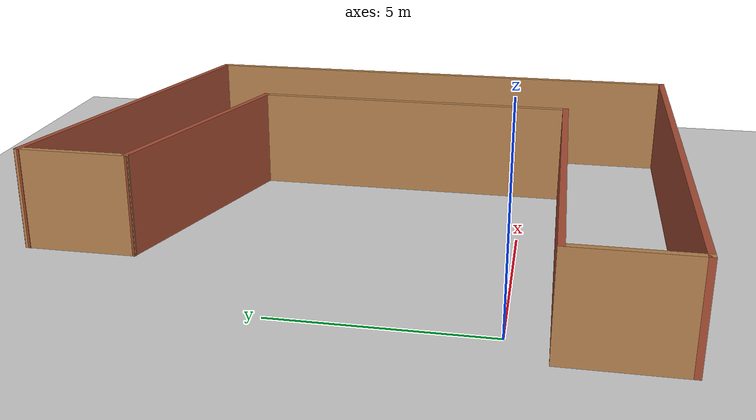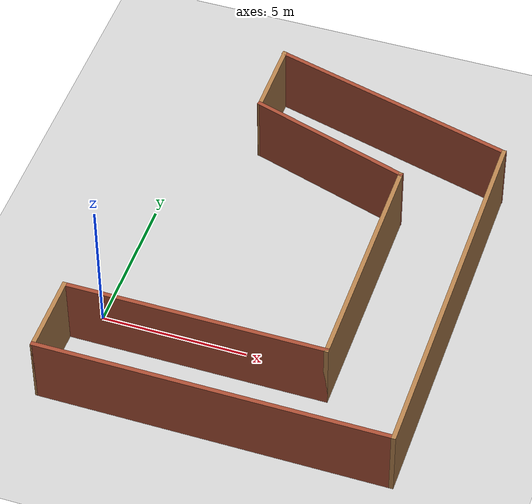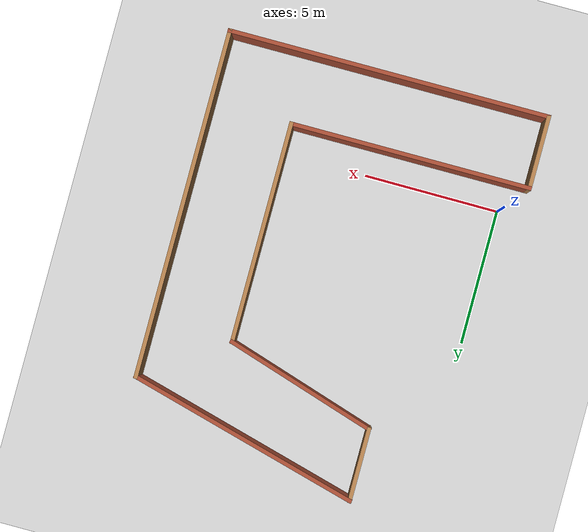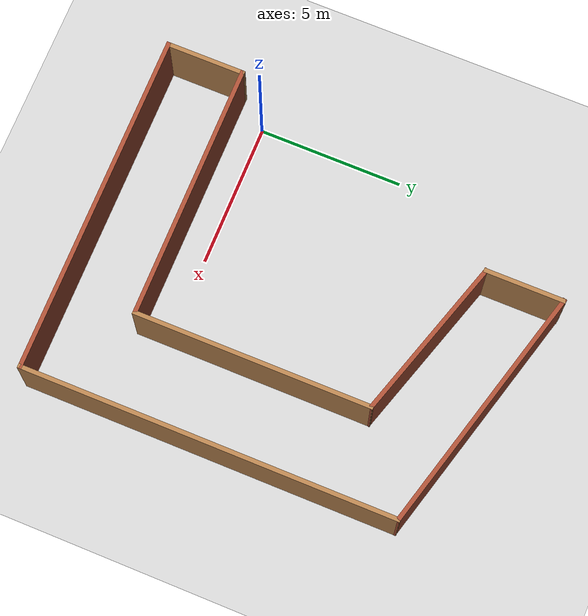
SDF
<sdf version="1.6">
 <world name="default">
  <light name="sun" type="directional">
   <pose>0 0 10 0 -0 0</pose>
   <diffuse>0.8 0.8 0.8 1</diffuse>
   <specular>0.2 0.2 0.2 1</specular>
   <attenuation>
    <range>1000</range>
    <constant>0.9</constant>
    <linear>0.01</linear>
    <quadratic>0.001</quadratic>
   </attenuation>
   <direction>-0.5 0.1 -0.9</direction>
  </light>
  <model name="ground_plane">
   <static>1</static>
   <link name="link">
    <collision name="collision">
     <geometry><plane><normal>0 0 1</normal><size>100 100</size></plane></geometry>
     <surface>
      <contact><collide_bitmask>65535</collide_bitmask></contact>
      <friction><ode><mu>100</mu><mu2>50</mu2></ode></friction>
     </surface>
    </collision>
    <visual name="visual">
     <cast_shadows>0</cast_shadows>
     <geometry><plane><normal>0 0 1</normal><size>100 100</size></plane></geometry>
     <material>
      <script><uri>file://media/materials/scripts/gazebo.material</uri><name>Gazebo/Grey</name></script>
     </material>
    </visual>
   </link>
  </model>
  <gravity>0 0 -9.8</gravity>
  <magnetic_field>6e-06 2.3e-05 -4.2e-05</magnetic_field>
  <atmosphere type="adiabatic"/>
  <physics name="default_physics" default="0" type="ode">
   <max_step_size>0.001</max_step_size>
   <real_time_factor>1</real_time_factor>
   <real_time_update_rate>1000</real_time_update_rate>
  </physics>
  <scene><ambient>0.4 0.4 0.4 1</ambient><background>0.7 0.7 0.7 1</background><shadows>1</shadows></scene>
  <audio><device>default</device></audio>
  <spherical_coordinates>
   <surface_model>EARTH_WGS84</surface_model>
   <latitude_deg>0</latitude_deg>
   <longitude_deg>0</longitude_deg>
   <elevation>0</elevation>
   <heading_deg>0</heading_deg>
  </spherical_coordinates>
  <model name="DSO_Review_Location">
   <pose>5.12984 3.92901 0 0 -0 0</pose>
   <link name="Wall_1">
    <collision name="Wall_1_Collision">
     <geometry><box><size>12 0.15 2.5</size></box></geometry>
     <pose>0 0 1.25 0 -0 0</pose>
    </collision>
    <visual name="Wall_1_Visual">
     <pose>0 0 1.25 0 -0 0</pose>
     <geometry><box><size>12 0.15 2.5</size></box></geometry>
     <material>
      <script><uri>file://media/materials/scripts/gazebo.material</uri><name>Gazebo/Bricks</name></script>
      <ambient>1 1 1 1</ambient>
     </material>
     <meta><layer>0</layer></meta>
    </visual>
    <pose>-0.008428 -7.5787 0 0 -0 0</pose>
   </link>
   <link name="Wall_11">
    <collision name="Wall_11_Collision">
     <geometry><box><size>2.8 0.15 2.5</size></box></geometry>
     <pose>0 0 1.25 0 -0 0</pose>
    </collision>
    <visual name="Wall_11_Visual">
     <pose>0 0 1.25 0 -0 0</pose>
     <geometry><box><size>2.8 0.15 2.5</size></box></geometry>
     <material>
      <script><uri>file://media/materials/scripts/gazebo.material</uri><name>Gazebo/Wood</name></script>
      <ambient>1 1 1 1</ambient>
     </material>
     <meta><layer>0</layer></meta>
    </visual>
    <pose>-2.63187 6.23685 0 0 -0 -1.5708</pose>
   </link>
   <link name="Wall_14">
    <collision name="Wall_14_Collision">
     <geometry><box><size>8.25 0.15 2.5</size></box></geometry>
     <pose>0 0 1.25 0 -0 0</pose>
    </collision>
    <visual name="Wall_14_Visual">
     <pose>0 0 1.25 0 -0 0</pose>
     <geometry><box><size>8.25 0.15 2.5</size></box></geometry>
     <material>
      <script><uri>file://media/materials/scripts/gazebo.material</uri><name>Gazebo/Wood</name></script>
      <ambient>1 1 1 1</ambient>
     </material>
     <meta><layer>0</layer></meta>
    </visual>
    <pose>2.91657 -0.878702 0 0 -0 1.5708</pose>
   </link>
   <link name="Wall_15">
    <collision name="Wall_15_Collision">
     <geometry><box><size>5.96504 0.15 2.5</size></box></geometry>
     <pose>0 0 1.25 0 -0 0</pose>
    </collision>
    <visual name="Wall_15_Visual">
     <pose>0 0 1.25 0 -0 0</pose>
     <geometry><box><size>5.96504 0.15 2.5</size></box></geometry>
     <material>
      <script><uri>file://media/materials/scripts/gazebo.material</uri><name>Gazebo/Bricks</name></script>
      <ambient>1 1 1 1</ambient>
     </material>
     <meta><layer>0</layer></meta>
    </visual>
    <pose>0.14235 4.04157 0 0 -0 2.83761</pose>
   </link>
   <link name="Wall_3">
    <collision name="Wall_3_Collision">
     <geometry><box><size>13 0.15 2.5</size></box></geometry>
     <pose>0 0 1.25 0 -0 0</pose>
    </collision>
    <visual name="Wall_3_Visual">
     <pose>0 0 1.25 0 -0 0</pose>
     <geometry><box><size>13 0.15 2.5</size></box></geometry>
     <material>
      <script><uri>file://media/materials/scripts/gazebo.material</uri><name>Gazebo/Wood</name></script>
      <ambient>1 1 1 1</ambient>
     </material>
     <meta><layer>0</layer></meta>
    </visual>
    <pose>5.91657 -1.1537 0 0 -0 1.5708</pose>
   </link>
   <link name="Wall_5">
    <collision name="Wall_5_Collision">
     <geometry><box><size>9 0.15 2.5</size></box></geometry>
     <pose>0 0 1.25 0 -0 0</pose>
    </collision>
    <visual name="Wall_5_Visual">
     <pose>0 0 1.25 0 -0 0</pose>
     <geometry><box><size>9 0.15 2.5</size></box></geometry>
     <material>
      <script><uri>file://media/materials/scripts/gazebo.material</uri><name>Gazebo/Bricks</name></script>
      <ambient>1 1 1 1</ambient>
     </material>
     <meta><layer>0</layer></meta>
    </visual>
    <pose>1.64235 6.41657 0 0 -0 2.87979</pose>
   </link>
   <link name="Wall_7">
    <collision name="Wall_7_Collision">
     <geometry><box><size>2.8 0.15 2.5</size></box></geometry>
     <pose>0 0 1.25 0 -0 0</pose>
    </collision>
    <visual name="Wall_7_Visual">
     <pose>0 0 1.25 0 -0 0</pose>
     <geometry><box><size>2.8 0.15 2.5</size></box></geometry>
     <material>
      <script><uri>file://media/materials/scripts/gazebo.material</uri><name>Gazebo/Wood</name></script>
      <ambient>1 1 1 1</ambient>
     </material>
     <meta><layer>0</layer></meta>
    </visual>
    <pose>-5.93343 -6.2537 0 0 -0 1.5708</pose>
   </link>
   <link name="Wall_9">
    <collision name="Wall_9_Collision">
     <geometry><box><size>9 0.15 2.5</size></box></geometry>
     <pose>0 0 1.25 0 -0 0</pose>
    </collision>
    <visual name="Wall_9_Visual">
     <pose>0 0 1.25 0 -0 0</pose>
     <geometry><box><size>9 0.15 2.5</size></box></geometry>
     <material>
      <script><uri>file://media/materials/scripts/gazebo.material</uri><name>Gazebo/Bricks</name></script>
      <ambient>1 1 1 1</ambient>
     </material>
     <meta><layer>0</layer></meta>
    </visual>
    <pose>-1.50843 -4.9287 0 0 -0 0</pose>
   </link>
   <static>1</static>
  </model>
 </world>
</sdf>
